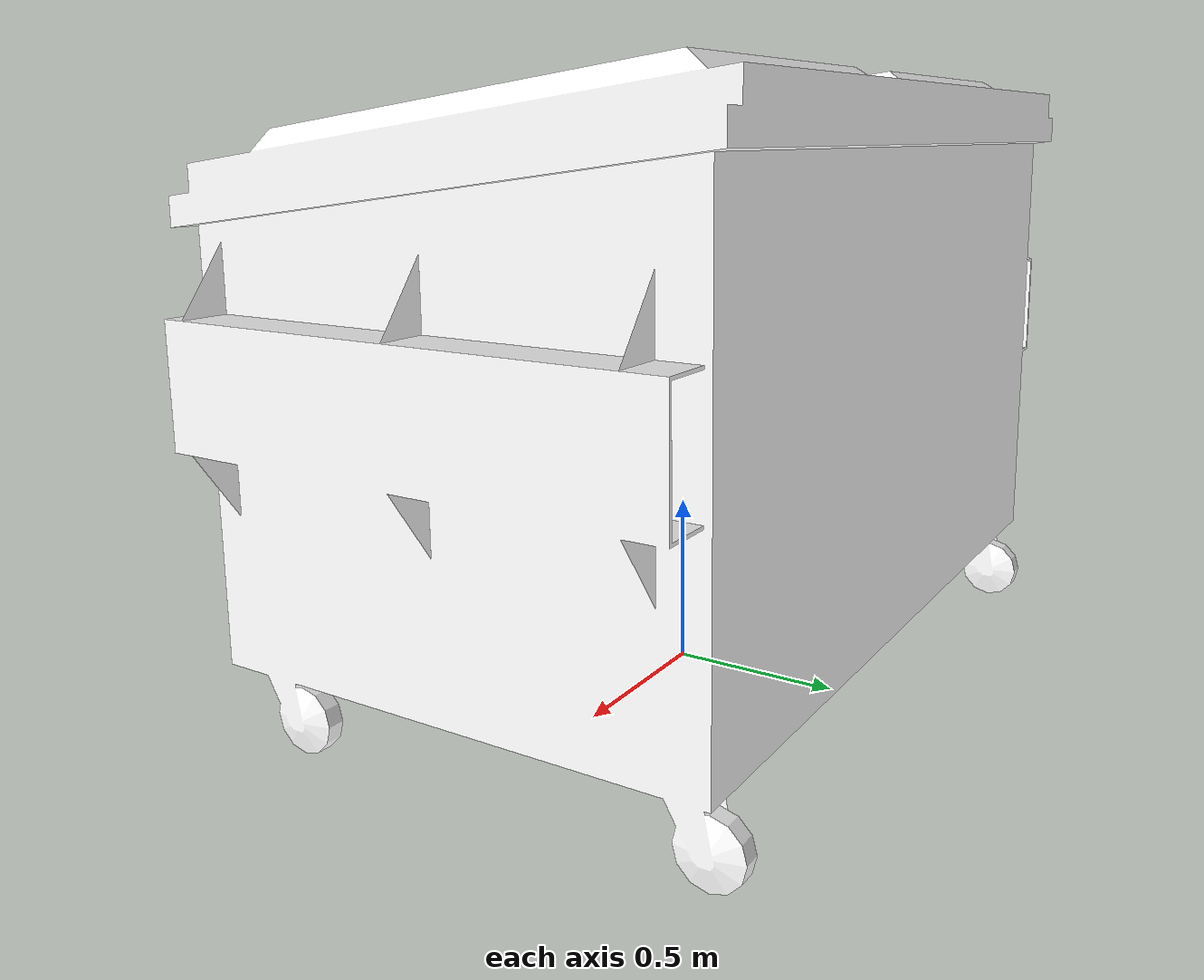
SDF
<?xml version="1.0" ?>
<sdf version="1.5">
  <model name="Dumpster">
    <link name="link">
      <collision name="collision">
        <geometry>
          <mesh>
            <scale>1.5 1.5 1.5</scale>
            <uri>model://dumpster/meshes/dumpster.dae</uri>
          </mesh>
        </geometry>
      </collision>
      <visual name="visual">
        <geometry>
          <mesh>
            <scale>1.5 1.5 1.5</scale>
            <uri>model://dumpster/meshes/dumpster.dae</uri>
          </mesh>
        </geometry>
        <material>
          <script>
            <uri>model://dumpster/materials/scripts</uri>
            <uri>model://dumpster/materials/textures</uri>
            <name>Dumpster/Diffuse</name>
          </script>
          <diffuse>1.0 1.0 1.0</diffuse>
          <specular>1.0 1.0 1.0</specular>
          <pbr>
            <metal>
              <albedo_map>model://dumpster/materials/textures/Dumpster_Diffuse.png</albedo_map>
              <metalness_map>model://dumpster/materials/textures/Dumpster_Spec.png</metalness_map>
            </metal>
          </pbr>
        </material>
      </visual>
    </link>
  </model>
</sdf>
